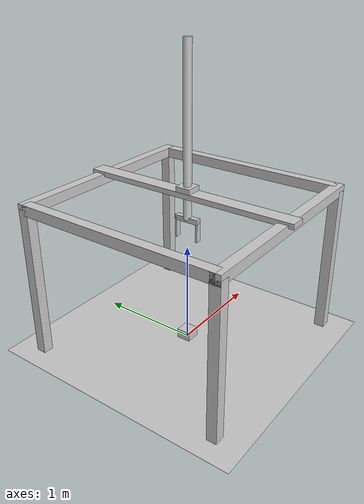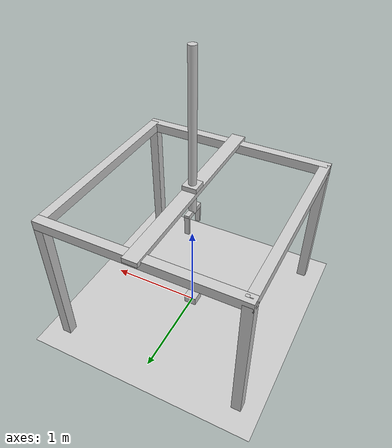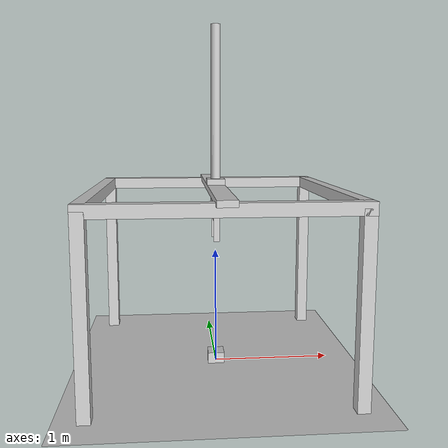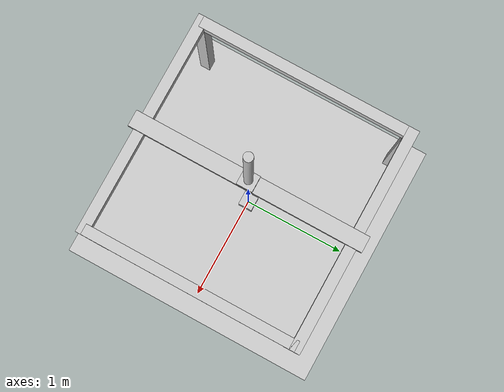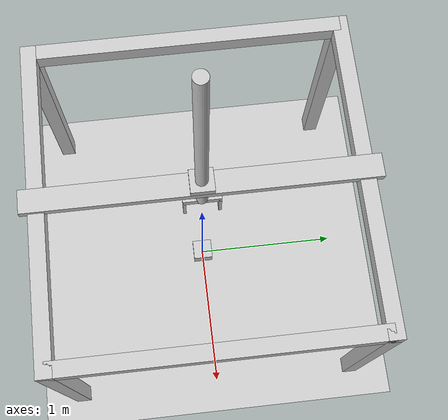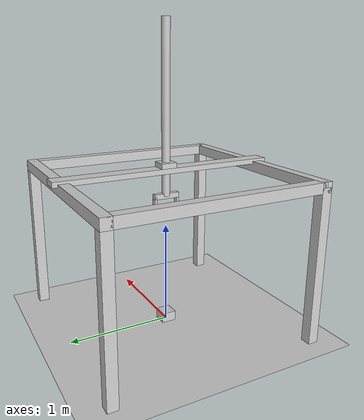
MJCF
<mujoco model="scene">
	<include file="claw_machine.xml" />

	<visual>
		<headlight diffuse="0.6 0.6 0.6" ambient="0.3 0.3 0.3" specular="0 0 0" />
		<rgba haze="0.15 0.25 0.35 1" />
		<global azimuth="160" elevation="-20" />
	</visual>

	<asset>
		<texture type="skybox" builtin="gradient" rgb1="0.3 0.5 0.7" rgb2="0 0 0" width="512"
			height="3072" />
		<texture type="2d" name="groundplane" builtin="checker" mark="edge"
			rgb1="0.2 0.3 0.4" rgb2="0.1 0.2 0.3" markrgb="0.8 0.8 0.8" width="300" height="300" />
		<material name="groundplane" texture="groundplane" texuniform="true" texrepeat="5 5"
			reflectance="0.2" />

		<material name="cube_mat" rgba="0.9 0.6 0.2 1" />
	</asset>

	<worldbody>
		<light pos="0 0 3.5" dir="0 0 -1" directional="true" />
		<geom name="floor" size="0 0 0.05" pos="0 0 0" type="plane" material="groundplane" />

		<body name="cube" pos="0.0 0.0 0.02">
			<freejoint />
			<geom type="box" size="0.07 0.07 0.07" material="cube_mat"
				mass="0.01" friction="3 0.01 0.0001" solref="0.008 1" solimp="0.95 0.99 0.001" />
		</body>
	</worldbody>
</mujoco>

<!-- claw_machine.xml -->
<mujoco model="claw_machine">
	<compiler angle="radian" coordinate="local" />

	<option timestep="0.002" gravity="0 0 -9.81" iterations="80" solver="Newton" />

	<default>
		<geom contype="1" conaffinity="1" density="500" margin="0.001" rgba="0.8 0.8 0.8 1" />
		<joint damping="6" armature="0.02" />
	</default>

	<asset>
		<material name="dark_grey" rgba="0.2 0.2 0.2 1" />
		<material name="red" rgba="0.8 0.1 0.1 1" />
		<material name="green" rgba="0.1 0.8 0.1 1" />
		<material name="blue" rgba="0.1 0.1 0.8 1" />
		<material name="white" rgba="0.9 0.9 0.9 1" />
	</asset>

	<worldbody>
		<body name="frame_structure" pos="0 0 0">
			<geom type="box" pos=" 1.0  1.0 0.75" size="0.05 0.05 0.75" material="dark_grey" />
			<geom type="box" pos=" 1.0 -1.0 0.75" size="0.05 0.05 0.75" material="dark_grey" />
			<geom type="box" pos="-1.0  1.0 0.75" size="0.05 0.05 0.75" material="dark_grey" />
			<geom type="box" pos="-1.0 -1.0 0.75" size="0.05 0.05 0.75" material="dark_grey" />

			<geom type="box" pos="0  1.0 1.5" size="1.05 0.05 0.05" material="dark_grey" />
			<geom type="box" pos="0 -1.0 1.5" size="1.05 0.05 0.05" material="dark_grey" />
			<geom type="box" pos=" 1.0 0 1.5" size="0.05 1.0 0.05" material="dark_grey" />
			<geom type="box" pos="-1.0 0 1.5" size="0.05 1.0 0.05" material="dark_grey" />

			<body name="x_bridge" pos="0 0 1.55">
				<joint name="joint_x" type="slide" axis="1 0 0" range="-0.85 0.85" />
				<geom type="box" pos="0 0 0" size="0.075 1.1 0.025" material="red" density="200" />

				<body name="y_carriage" pos="0 0 0.05">
					<joint name="joint_y" type="slide" axis="0 1 0" range="-0.9 0.9"
						damping="18" frictionloss="2.0" armature="0.06" />
					<geom type="box" pos="0 0 0" size="0.075 0.075 0.025" material="green" density="200" />

					<body name="z_plunger" pos="0 0 0.8" gravcomp="1">
						<joint name="joint_z" type="slide" axis="0 0 -1" range="0 1.10"
							damping="24" frictionloss="3.0" armature="0.08" />

						<geom type="cylinder" pos="0 0 -0.3" size="0.04 0.8" material="blue" density="200" />

						<body name="gripper_palm" pos="0 0 -1.1" gravcomp="1" euler="0 0 1.5708">
							<geom type="box" pos="0 0 0" size="0.125 0.025 0.025" material="white" density="200" />

							<body name="left_finger" pos="-0.115 0 0" gravcomp="1">
								<geom type="box" pos="0 0 -0.1" size="0.01 0.025 0.1"
									material="white" friction="1.5 0.01 0.0001" density="200" />
							</body>

							<body name="right_finger" pos="0.115 0 0" gravcomp="1">
								<joint name="joint_gripper" type="slide" axis="-1 0 0" range="0 0.105"
									damping="8" frictionloss="0.5" armature="0.02" />
								<geom type="box" pos="0 0 -0.1" size="0.01 0.025 0.1"
									material="white" friction="1.5 0.01 0.0001" density="200" />
							</body>

						</body>
					</body>
				</body>
			</body>
		</body>
	</worldbody>

	<contact>
		<exclude body1="frame_structure" body2="x_bridge" />
		<exclude body1="x_bridge" body2="y_carriage" />
		<exclude body1="y_carriage" body2="z_plunger" />
		<exclude body1="z_plunger" body2="gripper_palm" />
		<exclude body1="gripper_palm" body2="left_finger" />
		<exclude body1="gripper_palm" body2="right_finger" />
	</contact>

	<actuator>
		<position name="ax_x" joint="joint_x"
			kp="3000" kv="2400"
			ctrlrange="-0.85 0.85" forcerange="-900 900" />

		<position name="ax_y" joint="joint_y"
			kp="900" kv="220"
			ctrlrange="-0.9 0.9" forcerange="-1400 1400" />

		<position name="ax_z" joint="joint_z"
			kp="1700" kv="260"
			ctrlrange="0 1.10" forcerange="-1800 1800" />

		<position name="ax_grip" joint="joint_gripper"
			kp="350" kv="60"
			ctrlrange="0 0.105" forcerange="-300 300" />
	</actuator>

	<keyframe>
		<key name="home" qpos="0 0 0 0" />
	</keyframe>
</mujoco>
